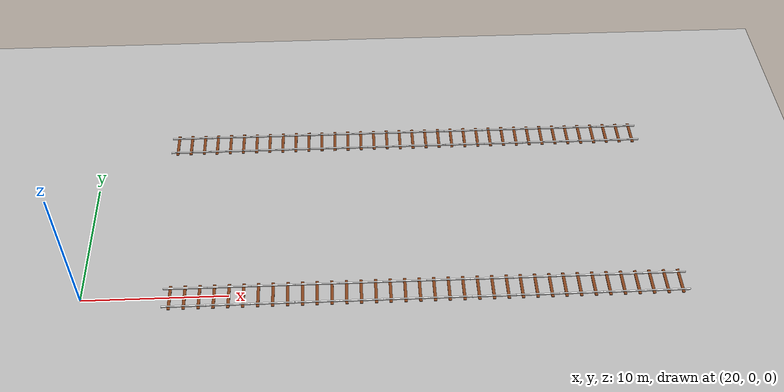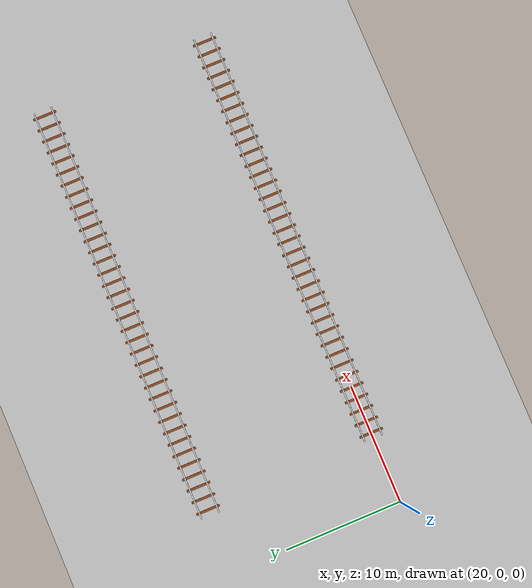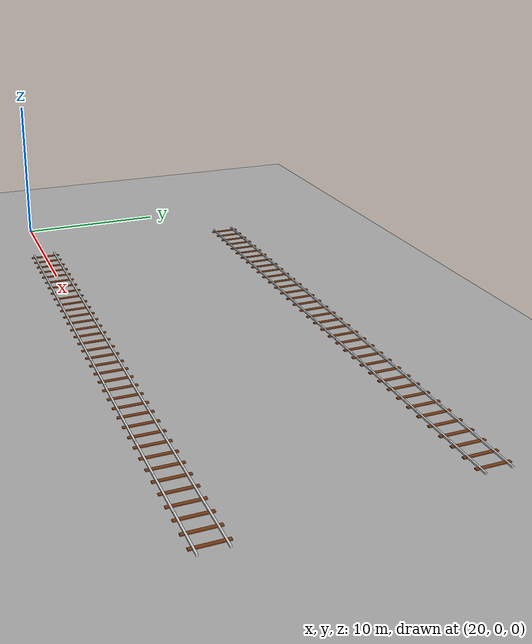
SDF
<sdf version="1.10">
 <world name="myworld">
  <model name="rail10">
   <static>true</static>
   <pose>27 0 0 0 0 0</pose>
   <link name="rail_link">
    <visual name="rail_left">
     <pose>0 0.75 0.050000000000000003 0 0 0</pose>
     <geometry><box><size>3 0.10000000000000001 0.10000000000000001</size></box></geometry>
     <material>
      <ambient>0.800000012 0.800000012 0.800000012 1</ambient>
      <diffuse>0.899999976 0.899999976 0.899999976 1</diffuse>
     </material>
    </visual>
    <visual name="rail_right">
     <pose>0 -0.75 0.050000000000000003 0 0 0</pose>
     <geometry><box><size>3 0.10000000000000001 0.10000000000000001</size></box></geometry>
     <material>
      <ambient>0.800000012 0.800000012 0.800000012 1</ambient>
      <diffuse>0.899999976 0.899999976 0.899999976 1</diffuse>
     </material>
    </visual>
    <visual name="traverse_1">
     <pose>1 0 0.025000000000000001 0 0 0</pose>
     <geometry><box><size>0.20000000000000001 2 0.050000000000000003</size></box></geometry>
     <material>
      <ambient>0.400000006 0.200000003 0.100000001 1</ambient>
      <diffuse>0.5 0.25 0.100000001 1</diffuse>
     </material>
    </visual>
    <visual name="traverse_2">
     <pose>0 0 0.025000000000000001 0 0 0</pose>
     <geometry><box><size>0.20000000000000001 2 0.050000000000000003</size></box></geometry>
     <material>
      <ambient>0.400000006 0.200000003 0.100000001 1</ambient>
      <diffuse>0.5 0.25 0.100000001 1</diffuse>
     </material>
    </visual>
    <visual name="traverse_3">
     <pose>-1 0 0.025000000000000001 0 0 0</pose>
     <geometry><box><size>0.20000000000000001 2 0.050000000000000003</size></box></geometry>
     <material>
      <ambient>0.400000006 0.200000003 0.100000001 1</ambient>
      <diffuse>0.5 0.25 0.100000001 1</diffuse>
     </material>
    </visual>
    <inertial>
     <mass>1</mass>
     <inertia><ixx>1</ixx><ixy>0</ixy><ixz>0</ixz><iyy>1</iyy><iyz>0</iyz><izz>1</izz></inertia>
    </inertial>
   </link>
  </model>
  <model name="rail11">
   <static>true</static>
   <pose>30 0 0 0 0 0</pose>
   <link name="rail_link">
    <visual name="rail_left">
     <pose>0 0.75 0.050000000000000003 0 0 0</pose>
     <geometry><box><size>3 0.10000000000000001 0.10000000000000001</size></box></geometry>
     <material>
      <ambient>0.800000012 0.800000012 0.800000012 1</ambient>
      <diffuse>0.899999976 0.899999976 0.899999976 1</diffuse>
     </material>
    </visual>
    <visual name="rail_right">
     <pose>0 -0.75 0.050000000000000003 0 0 0</pose>
     <geometry><box><size>3 0.10000000000000001 0.10000000000000001</size></box></geometry>
     <material>
      <ambient>0.800000012 0.800000012 0.800000012 1</ambient>
      <diffuse>0.899999976 0.899999976 0.899999976 1</diffuse>
     </material>
    </visual>
    <visual name="traverse_1">
     <pose>1 0 0.025000000000000001 0 0 0</pose>
     <geometry><box><size>0.20000000000000001 2 0.050000000000000003</size></box></geometry>
     <material>
      <ambient>0.400000006 0.200000003 0.100000001 1</ambient>
      <diffuse>0.5 0.25 0.100000001 1</diffuse>
     </material>
    </visual>
    <visual name="traverse_2">
     <pose>0 0 0.025000000000000001 0 0 0</pose>
     <geometry><box><size>0.20000000000000001 2 0.050000000000000003</size></box></geometry>
     <material>
      <ambient>0.400000006 0.200000003 0.100000001 1</ambient>
      <diffuse>0.5 0.25 0.100000001 1</diffuse>
     </material>
    </visual>
    <visual name="traverse_3">
     <pose>-1 0 0.025000000000000001 0 0 0</pose>
     <geometry><box><size>0.20000000000000001 2 0.050000000000000003</size></box></geometry>
     <material>
      <ambient>0.400000006 0.200000003 0.100000001 1</ambient>
      <diffuse>0.5 0.25 0.100000001 1</diffuse>
     </material>
    </visual>
    <inertial>
     <mass>1</mass>
     <inertia><ixx>1</ixx><ixy>0</ixy><ixz>0</ixz><iyy>1</iyy><iyz>0</iyz><izz>1</izz></inertia>
    </inertial>
   </link>
  </model>
  <model name="rail12">
   <static>true</static>
   <pose>33 0 0 0 0 0</pose>
   <link name="rail_link">
    <visual name="rail_left">
     <pose>0 0.75 0.050000000000000003 0 0 0</pose>
     <geometry><box><size>3 0.10000000000000001 0.10000000000000001</size></box></geometry>
     <material>
      <ambient>0.800000012 0.800000012 0.800000012 1</ambient>
      <diffuse>0.899999976 0.899999976 0.899999976 1</diffuse>
     </material>
    </visual>
    <visual name="rail_right">
     <pose>0 -0.75 0.050000000000000003 0 0 0</pose>
     <geometry><box><size>3 0.10000000000000001 0.10000000000000001</size></box></geometry>
     <material>
      <ambient>0.800000012 0.800000012 0.800000012 1</ambient>
      <diffuse>0.899999976 0.899999976 0.899999976 1</diffuse>
     </material>
    </visual>
    <visual name="traverse_1">
     <pose>1 0 0.025000000000000001 0 0 0</pose>
     <geometry><box><size>0.20000000000000001 2 0.050000000000000003</size></box></geometry>
     <material>
      <ambient>0.400000006 0.200000003 0.100000001 1</ambient>
      <diffuse>0.5 0.25 0.100000001 1</diffuse>
     </material>
    </visual>
    <visual name="traverse_2">
     <pose>0 0 0.025000000000000001 0 0 0</pose>
     <geometry><box><size>0.20000000000000001 2 0.050000000000000003</size></box></geometry>
     <material>
      <ambient>0.400000006 0.200000003 0.100000001 1</ambient>
      <diffuse>0.5 0.25 0.100000001 1</diffuse>
     </material>
    </visual>
    <visual name="traverse_3">
     <pose>-1 0 0.025000000000000001 0 0 0</pose>
     <geometry><box><size>0.20000000000000001 2 0.050000000000000003</size></box></geometry>
     <material>
      <ambient>0.400000006 0.200000003 0.100000001 1</ambient>
      <diffuse>0.5 0.25 0.100000001 1</diffuse>
     </material>
    </visual>
    <inertial>
     <mass>1</mass>
     <inertia><ixx>1</ixx><ixy>0</ixy><ixz>0</ixz><iyy>1</iyy><iyz>0</iyz><izz>1</izz></inertia>
    </inertial>
   </link>
  </model>
  <model name="ground_plane">
   <static>true</static>
   <link name="link">
    <collision name="collision">
     <geometry><plane><normal>0 0 1</normal><size>1000 1000</size></plane></geometry>
    </collision>
    <visual name="visual">
     <geometry><plane><normal>0 0 1</normal><size>1000 1000</size></plane></geometry>
     <material>
      <ambient>0.699999988 0.699999988 0.699999988 1</ambient>
      <diffuse>0.699999988 0.699999988 0.699999988 1</diffuse>
     </material>
    </visual>
    <inertial>
     <mass>1</mass>
     <inertia><ixx>1</ixx><ixy>0</ixy><ixz>0</ixz><iyy>1</iyy><iyz>0</iyz><izz>1</izz></inertia>
    </inertial>
   </link>
  </model>
  <model name="rail1_7_2_1">
   <static>true</static>
   <pose>26.402999999999999 14.5520100000000001 0 0 0 0</pose>
   <link name="rail_link">
    <visual name="rail_left">
     <pose>0 0.75 0.050000000000000003 0 0 0</pose>
     <geometry><box><size>3 0.10000000000000001 0.10000000000000001</size></box></geometry>
     <material>
      <ambient>0.800000012 0.800000012 0.800000012 1</ambient>
      <diffuse>0.899999976 0.899999976 0.899999976 1</diffuse>
     </material>
    </visual>
    <visual name="rail_right">
     <pose>0 -0.75 0.050000000000000003 0 0 0</pose>
     <geometry><box><size>3 0.10000000000000001 0.10000000000000001</size></box></geometry>
     <material>
      <ambient>0.800000012 0.800000012 0.800000012 1</ambient>
      <diffuse>0.899999976 0.899999976 0.899999976 1</diffuse>
     </material>
    </visual>
    <visual name="traverse_1">
     <pose>1 0 0.025000000000000001 0 0 0</pose>
     <geometry><box><size>0.20000000000000001 2 0.050000000000000003</size></box></geometry>
     <material>
      <ambient>0.400000006 0.200000003 0.100000001 1</ambient>
      <diffuse>0.5 0.25 0.100000001 1</diffuse>
     </material>
    </visual>
    <visual name="traverse_2">
     <pose>0 0 0.025000000000000001 0 0 0</pose>
     <geometry><box><size>0.20000000000000001 2 0.050000000000000003</size></box></geometry>
     <material>
      <ambient>0.400000006 0.200000003 0.100000001 1</ambient>
      <diffuse>0.5 0.25 0.100000001 1</diffuse>
     </material>
    </visual>
    <visual name="traverse_3">
     <pose>-1 0 0.025000000000000001 0 0 0</pose>
     <geometry><box><size>0.20000000000000001 2 0.050000000000000003</size></box></geometry>
     <material>
      <ambient>0.400000006 0.200000003 0.100000001 1</ambient>
      <diffuse>0.5 0.25 0.100000001 1</diffuse>
     </material>
    </visual>
   </link>
  </model>
  <model name="rail1_7_2_2">
   <static>true</static>
   <pose>29.383800000000001 14.5522 0 0 0 0</pose>
   <link name="rail_link">
    <visual name="rail_left">
     <pose>0 0.75 0.050000000000000003 0 0 0</pose>
     <geometry><box><size>3 0.10000000000000001 0.10000000000000001</size></box></geometry>
     <material>
      <ambient>0.800000012 0.800000012 0.800000012 1</ambient>
      <diffuse>0.899999976 0.899999976 0.899999976 1</diffuse>
     </material>
    </visual>
    <visual name="rail_right">
     <pose>0 -0.75 0.050000000000000003 0 0 0</pose>
     <geometry><box><size>3 0.10000000000000001 0.10000000000000001</size></box></geometry>
     <material>
      <ambient>0.800000012 0.800000012 0.800000012 1</ambient>
      <diffuse>0.899999976 0.899999976 0.899999976 1</diffuse>
     </material>
    </visual>
    <visual name="traverse_1">
     <pose>1 0 0.025000000000000001 0 0 0</pose>
     <geometry><box><size>0.20000000000000001 2 0.050000000000000003</size></box></geometry>
     <material>
      <ambient>0.400000006 0.200000003 0.100000001 1</ambient>
      <diffuse>0.5 0.25 0.100000001 1</diffuse>
     </material>
    </visual>
    <visual name="traverse_2">
     <pose>0 0 0.025000000000000001 0 0 0</pose>
     <geometry><box><size>0.20000000000000001 2 0.050000000000000003</size></box></geometry>
     <material>
      <ambient>0.400000006 0.200000003 0.100000001 1</ambient>
      <diffuse>0.5 0.25 0.100000001 1</diffuse>
     </material>
    </visual>
    <visual name="traverse_3">
     <pose>-1 0 0.025000000000000001 0 0 0</pose>
     <geometry><box><size>0.20000000000000001 2 0.050000000000000003</size></box></geometry>
     <material>
      <ambient>0.400000006 0.200000003 0.100000001 1</ambient>
      <diffuse>0.5 0.25 0.100000001 1</diffuse>
     </material>
    </visual>
   </link>
  </model>
  <model name="rail1_7_2_3">
   <static>true</static>
   <pose>32.385199999999998 14.5532899999999996 0 0 0 0</pose>
   <link name="rail_link">
    <visual name="rail_left">
     <pose>0 0.75 0.050000000000000003 0 0 0</pose>
     <geometry><box><size>3 0.10000000000000001 0.10000000000000001</size></box></geometry>
     <material>
      <ambient>0.800000012 0.800000012 0.800000012 1</ambient>
      <diffuse>0.899999976 0.899999976 0.899999976 1</diffuse>
     </material>
    </visual>
    <visual name="rail_right">
     <pose>0 -0.75 0.050000000000000003 0 0 0</pose>
     <geometry><box><size>3 0.10000000000000001 0.10000000000000001</size></box></geometry>
     <material>
      <ambient>0.800000012 0.800000012 0.800000012 1</ambient>
      <diffuse>0.899999976 0.899999976 0.899999976 1</diffuse>
     </material>
    </visual>
    <visual name="traverse_1">
     <pose>1 0 0.025000000000000001 0 0 0</pose>
     <geometry><box><size>0.20000000000000001 2 0.050000000000000003</size></box></geometry>
     <material>
      <ambient>0.400000006 0.200000003 0.100000001 1</ambient>
      <diffuse>0.5 0.25 0.100000001 1</diffuse>
     </material>
    </visual>
    <visual name="traverse_2">
     <pose>0 0 0.025000000000000001 0 0 0</pose>
     <geometry><box><size>0.20000000000000001 2 0.050000000000000003</size></box></geometry>
     <material>
      <ambient>0.400000006 0.200000003 0.100000001 1</ambient>
      <diffuse>0.5 0.25 0.100000001 1</diffuse>
     </material>
    </visual>
    <visual name="traverse_3">
     <pose>-1 0 0.025000000000000001 0 0 0</pose>
     <geometry><box><size>0.20000000000000001 2 0.050000000000000003</size></box></geometry>
     <material>
      <ambient>0.400000006 0.200000003 0.100000001 1</ambient>
      <diffuse>0.5 0.25 0.100000001 1</diffuse>
     </material>
    </visual>
   </link>
  </model>
  <model name="rail12_1">
   <static>true</static>
   <pose>36.006 0.0024025600000000002 0 0 0 0</pose>
   <link name="rail_link">
    <visual name="rail_left">
     <pose>0 0.75 0.050000000000000003 0 0 0</pose>
     <geometry><box><size>3 0.10000000000000001 0.10000000000000001</size></box></geometry>
     <material>
      <ambient>0.800000012 0.800000012 0.800000012 1</ambient>
      <diffuse>0.899999976 0.899999976 0.899999976 1</diffuse>
     </material>
    </visual>
    <visual name="rail_right">
     <pose>0 -0.75 0.050000000000000003 0 0 0</pose>
     <geometry><box><size>3 0.10000000000000001 0.10000000000000001</size></box></geometry>
     <material>
      <ambient>0.800000012 0.800000012 0.800000012 1</ambient>
      <diffuse>0.899999976 0.899999976 0.899999976 1</diffuse>
     </material>
    </visual>
    <visual name="traverse_1">
     <pose>1 0 0.025000000000000001 0 0 0</pose>
     <geometry><box><size>0.20000000000000001 2 0.050000000000000003</size></box></geometry>
     <material>
      <ambient>0.400000006 0.200000003 0.100000001 1</ambient>
      <diffuse>0.5 0.25 0.100000001 1</diffuse>
     </material>
    </visual>
    <visual name="traverse_2">
     <pose>0 0 0.025000000000000001 0 0 0</pose>
     <geometry><box><size>0.20000000000000001 2 0.050000000000000003</size></box></geometry>
     <material>
      <ambient>0.400000006 0.200000003 0.100000001 1</ambient>
      <diffuse>0.5 0.25 0.100000001 1</diffuse>
     </material>
    </visual>
    <visual name="traverse_3">
     <pose>-1 0 0.025000000000000001 0 0 0</pose>
     <geometry><box><size>0.20000000000000001 2 0.050000000000000003</size></box></geometry>
     <material>
      <ambient>0.400000006 0.200000003 0.100000001 1</ambient>
      <diffuse>0.5 0.25 0.100000001 1</diffuse>
     </material>
    </visual>
   </link>
  </model>
  <model name="rail12_2">
   <static>true</static>
   <pose>39.000700000000002 -0.00069501899999999995 0 0 0 0</pose>
   <link name="rail_link">
    <visual name="rail_left">
     <pose>0 0.75 0.050000000000000003 0 0 0</pose>
     <geometry><box><size>3 0.10000000000000001 0.10000000000000001</size></box></geometry>
     <material>
      <ambient>0.800000012 0.800000012 0.800000012 1</ambient>
      <diffuse>0.899999976 0.899999976 0.899999976 1</diffuse>
     </material>
    </visual>
    <visual name="rail_right">
     <pose>0 -0.75 0.050000000000000003 0 0 0</pose>
     <geometry><box><size>3 0.10000000000000001 0.10000000000000001</size></box></geometry>
     <material>
      <ambient>0.800000012 0.800000012 0.800000012 1</ambient>
      <diffuse>0.899999976 0.899999976 0.899999976 1</diffuse>
     </material>
    </visual>
    <visual name="traverse_1">
     <pose>1 0 0.025000000000000001 0 0 0</pose>
     <geometry><box><size>0.20000000000000001 2 0.050000000000000003</size></box></geometry>
     <material>
      <ambient>0.400000006 0.200000003 0.100000001 1</ambient>
      <diffuse>0.5 0.25 0.100000001 1</diffuse>
     </material>
    </visual>
    <visual name="traverse_2">
     <pose>0 0 0.025000000000000001 0 0 0</pose>
     <geometry><box><size>0.20000000000000001 2 0.050000000000000003</size></box></geometry>
     <material>
      <ambient>0.400000006 0.200000003 0.100000001 1</ambient>
      <diffuse>0.5 0.25 0.100000001 1</diffuse>
     </material>
    </visual>
    <visual name="traverse_3">
     <pose>-1 0 0.025000000000000001 0 0 0</pose>
     <geometry><box><size>0.20000000000000001 2 0.050000000000000003</size></box></geometry>
     <material>
      <ambient>0.400000006 0.200000003 0.100000001 1</ambient>
      <diffuse>0.5 0.25 0.100000001 1</diffuse>
     </material>
    </visual>
   </link>
  </model>
  <model name="rail12_3">
   <static>true</static>
   <pose>42.0002 0.0034047999999999999 0 0 0 0</pose>
   <link name="rail_link">
    <visual name="rail_left">
     <pose>0 0.75 0.050000000000000003 0 0 0</pose>
     <geometry><box><size>3 0.10000000000000001 0.10000000000000001</size></box></geometry>
     <material>
      <ambient>0.800000012 0.800000012 0.800000012 1</ambient>
      <diffuse>0.899999976 0.899999976 0.899999976 1</diffuse>
     </material>
    </visual>
    <visual name="rail_right">
     <pose>0 -0.75 0.050000000000000003 0 0 0</pose>
     <geometry><box><size>3 0.10000000000000001 0.10000000000000001</size></box></geometry>
     <material>
      <ambient>0.800000012 0.800000012 0.800000012 1</ambient>
      <diffuse>0.899999976 0.899999976 0.899999976 1</diffuse>
     </material>
    </visual>
    <visual name="traverse_1">
     <pose>1 0 0.025000000000000001 0 0 0</pose>
     <geometry><box><size>0.20000000000000001 2 0.050000000000000003</size></box></geometry>
     <material>
      <ambient>0.400000006 0.200000003 0.100000001 1</ambient>
      <diffuse>0.5 0.25 0.100000001 1</diffuse>
     </material>
    </visual>
    <visual name="traverse_2">
     <pose>0 0 0.025000000000000001 0 0 0</pose>
     <geometry><box><size>0.20000000000000001 2 0.050000000000000003</size></box></geometry>
     <material>
      <ambient>0.400000006 0.200000003 0.100000001 1</ambient>
      <diffuse>0.5 0.25 0.100000001 1</diffuse>
     </material>
    </visual>
    <visual name="traverse_3">
     <pose>-1 0 0.025000000000000001 0 0 0</pose>
     <geometry><box><size>0.20000000000000001 2 0.050000000000000003</size></box></geometry>
     <material>
      <ambient>0.400000006 0.200000003 0.100000001 1</ambient>
      <diffuse>0.5 0.25 0.100000001 1</diffuse>
     </material>
    </visual>
   </link>
  </model>
  <model name="rail12_4">
   <static>true</static>
   <pose>44.994999999999997 0.0041670500000000003 0 0 0 0</pose>
   <link name="rail_link">
    <visual name="rail_left">
     <pose>0 0.75 0.050000000000000003 0 0 0</pose>
     <geometry><box><size>3 0.10000000000000001 0.10000000000000001</size></box></geometry>
     <material>
      <ambient>0.800000012 0.800000012 0.800000012 1</ambient>
      <diffuse>0.899999976 0.899999976 0.899999976 1</diffuse>
     </material>
    </visual>
    <visual name="rail_right">
     <pose>0 -0.75 0.050000000000000003 0 0 0</pose>
     <geometry><box><size>3 0.10000000000000001 0.10000000000000001</size></box></geometry>
     <material>
      <ambient>0.800000012 0.800000012 0.800000012 1</ambient>
      <diffuse>0.899999976 0.899999976 0.899999976 1</diffuse>
     </material>
    </visual>
    <visual name="traverse_1">
     <pose>1 0 0.025000000000000001 0 0 0</pose>
     <geometry><box><size>0.20000000000000001 2 0.050000000000000003</size></box></geometry>
     <material>
      <ambient>0.400000006 0.200000003 0.100000001 1</ambient>
      <diffuse>0.5 0.25 0.100000001 1</diffuse>
     </material>
    </visual>
    <visual name="traverse_2">
     <pose>0 0 0.025000000000000001 0 0 0</pose>
     <geometry><box><size>0.20000000000000001 2 0.050000000000000003</size></box></geometry>
     <material>
      <ambient>0.400000006 0.200000003 0.100000001 1</ambient>
      <diffuse>0.5 0.25 0.100000001 1</diffuse>
     </material>
    </visual>
    <visual name="traverse_3">
     <pose>-1 0 0.025000000000000001 0 0 0</pose>
     <geometry><box><size>0.20000000000000001 2 0.050000000000000003</size></box></geometry>
     <material>
      <ambient>0.400000006 0.200000003 0.100000001 1</ambient>
      <diffuse>0.5 0.25 0.100000001 1</diffuse>
     </material>
    </visual>
   </link>
  </model>
  <model name="rail12_5">
   <static>true</static>
   <pose>47.9998 -0.0062526300000000003 0 0 0 0</pose>
   <link name="rail_link">
    <visual name="rail_left">
     <pose>0 0.75 0.050000000000000003 0 0 0</pose>
     <geometry><box><size>3 0.10000000000000001 0.10000000000000001</size></box></geometry>
     <material>
      <ambient>0.800000012 0.800000012 0.800000012 1</ambient>
      <diffuse>0.899999976 0.899999976 0.899999976 1</diffuse>
     </material>
    </visual>
    <visual name="rail_right">
     <pose>0 -0.75 0.050000000000000003 0 0 0</pose>
     <geometry><box><size>3 0.10000000000000001 0.10000000000000001</size></box></geometry>
     <material>
      <ambient>0.800000012 0.800000012 0.800000012 1</ambient>
      <diffuse>0.899999976 0.899999976 0.899999976 1</diffuse>
     </material>
    </visual>
    <visual name="traverse_1">
     <pose>1 0 0.025000000000000001 0 0 0</pose>
     <geometry><box><size>0.20000000000000001 2 0.050000000000000003</size></box></geometry>
     <material>
      <ambient>0.400000006 0.200000003 0.100000001 1</ambient>
      <diffuse>0.5 0.25 0.100000001 1</diffuse>
     </material>
    </visual>
    <visual name="traverse_2">
     <pose>0 0 0.025000000000000001 0 0 0</pose>
     <geometry><box><size>0.20000000000000001 2 0.050000000000000003</size></box></geometry>
     <material>
      <ambient>0.400000006 0.200000003 0.100000001 1</ambient>
      <diffuse>0.5 0.25 0.100000001 1</diffuse>
     </material>
    </visual>
    <visual name="traverse_3">
     <pose>-1 0 0.025000000000000001 0 0 0</pose>
     <geometry><box><size>0.20000000000000001 2 0.050000000000000003</size></box></geometry>
     <material>
      <ambient>0.400000006 0.200000003 0.100000001 1</ambient>
      <diffuse>0.5 0.25 0.100000001 1</diffuse>
     </material>
    </visual>
   </link>
  </model>
  <model name="rail12_6">
   <static>true</static>
   <pose>50.968299999999999 -0.0039465000000000004 0 0 0 0</pose>
   <link name="rail_link">
    <visual name="rail_left">
     <pose>0 0.75 0.050000000000000003 0 0 0</pose>
     <geometry><box><size>3 0.10000000000000001 0.10000000000000001</size></box></geometry>
     <material>
      <ambient>0.800000012 0.800000012 0.800000012 1</ambient>
      <diffuse>0.899999976 0.899999976 0.899999976 1</diffuse>
     </material>
    </visual>
    <visual name="rail_right">
     <pose>0 -0.75 0.050000000000000003 0 0 0</pose>
     <geometry><box><size>3 0.10000000000000001 0.10000000000000001</size></box></geometry>
     <material>
      <ambient>0.800000012 0.800000012 0.800000012 1</ambient>
      <diffuse>0.899999976 0.899999976 0.899999976 1</diffuse>
     </material>
    </visual>
    <visual name="traverse_1">
     <pose>1 0 0.025000000000000001 0 0 0</pose>
     <geometry><box><size>0.20000000000000001 2 0.050000000000000003</size></box></geometry>
     <material>
      <ambient>0.400000006 0.200000003 0.100000001 1</ambient>
      <diffuse>0.5 0.25 0.100000001 1</diffuse>
     </material>
    </visual>
    <visual name="traverse_2">
     <pose>0 0 0.025000000000000001 0 0 0</pose>
     <geometry><box><size>0.20000000000000001 2 0.050000000000000003</size></box></geometry>
     <material>
      <ambient>0.400000006 0.200000003 0.100000001 1</ambient>
      <diffuse>0.5 0.25 0.100000001 1</diffuse>
     </material>
    </visual>
    <visual name="traverse_3">
     <pose>-1 0 0.025000000000000001 0 0 0</pose>
     <geometry><box><size>0.20000000000000001 2 0.050000000000000003</size></box></geometry>
     <material>
      <ambient>0.400000006 0.200000003 0.100000001 1</ambient>
      <diffuse>0.5 0.25 0.100000001 1</diffuse>
     </material>
    </visual>
   </link>
  </model>
  <model name="rail12_7">
   <static>true</static>
   <pose>53.939599999999999 0.0031003099999999998 0 0 0 0</pose>
   <link name="rail_link">
    <visual name="rail_left">
     <pose>0 0.75 0.050000000000000003 0 0 0</pose>
     <geometry><box><size>3 0.10000000000000001 0.10000000000000001</size></box></geometry>
     <material>
      <ambient>0.800000012 0.800000012 0.800000012 1</ambient>
      <diffuse>0.899999976 0.899999976 0.899999976 1</diffuse>
     </material>
    </visual>
    <visual name="rail_right">
     <pose>0 -0.75 0.050000000000000003 0 0 0</pose>
     <geometry><box><size>3 0.10000000000000001 0.10000000000000001</size></box></geometry>
     <material>
      <ambient>0.800000012 0.800000012 0.800000012 1</ambient>
      <diffuse>0.899999976 0.899999976 0.899999976 1</diffuse>
     </material>
    </visual>
    <visual name="traverse_1">
     <pose>1 0 0.025000000000000001 0 0 0</pose>
     <geometry><box><size>0.20000000000000001 2 0.050000000000000003</size></box></geometry>
     <material>
      <ambient>0.400000006 0.200000003 0.100000001 1</ambient>
      <diffuse>0.5 0.25 0.100000001 1</diffuse>
     </material>
    </visual>
    <visual name="traverse_2">
     <pose>0 0 0.025000000000000001 0 0 0</pose>
     <geometry><box><size>0.20000000000000001 2 0.050000000000000003</size></box></geometry>
     <material>
      <ambient>0.400000006 0.200000003 0.100000001 1</ambient>
      <diffuse>0.5 0.25 0.100000001 1</diffuse>
     </material>
    </visual>
    <visual name="traverse_3">
     <pose>-1 0 0.025000000000000001 0 0 0</pose>
     <geometry><box><size>0.20000000000000001 2 0.050000000000000003</size></box></geometry>
     <material>
      <ambient>0.400000006 0.200000003 0.100000001 1</ambient>
      <diffuse>0.5 0.25 0.100000001 1</diffuse>
     </material>
    </visual>
   </link>
  </model>
  <model name="rail12_8">
   <static>true</static>
   <pose>56.937899999999999 0.00445832 0 0 0 0</pose>
   <link name="rail_link">
    <visual name="rail_left">
     <pose>0 0.75 0.050000000000000003 0 0 0</pose>
     <geometry><box><size>3 0.10000000000000001 0.10000000000000001</size></box></geometry>
     <material>
      <ambient>0.800000012 0.800000012 0.800000012 1</ambient>
      <diffuse>0.899999976 0.899999976 0.899999976 1</diffuse>
     </material>
    </visual>
    <visual name="rail_right">
     <pose>0 -0.75 0.050000000000000003 0 0 0</pose>
     <geometry><box><size>3 0.10000000000000001 0.10000000000000001</size></box></geometry>
     <material>
      <ambient>0.800000012 0.800000012 0.800000012 1</ambient>
      <diffuse>0.899999976 0.899999976 0.899999976 1</diffuse>
     </material>
    </visual>
    <visual name="traverse_1">
     <pose>1 0 0.025000000000000001 0 0 0</pose>
     <geometry><box><size>0.20000000000000001 2 0.050000000000000003</size></box></geometry>
     <material>
      <ambient>0.400000006 0.200000003 0.100000001 1</ambient>
      <diffuse>0.5 0.25 0.100000001 1</diffuse>
     </material>
    </visual>
    <visual name="traverse_2">
     <pose>0 0 0.025000000000000001 0 0 0</pose>
     <geometry><box><size>0.20000000000000001 2 0.050000000000000003</size></box></geometry>
     <material>
      <ambient>0.400000006 0.200000003 0.100000001 1</ambient>
      <diffuse>0.5 0.25 0.100000001 1</diffuse>
     </material>
    </visual>
    <visual name="traverse_3">
     <pose>-1 0 0.025000000000000001 0 0 0</pose>
     <geometry><box><size>0.20000000000000001 2 0.050000000000000003</size></box></geometry>
     <material>
      <ambient>0.400000006 0.200000003 0.100000001 1</ambient>
      <diffuse>0.5 0.25 0.100000001 1</diffuse>
     </material>
    </visual>
   </link>
  </model>
  <model name="rail12_9">
   <static>true</static>
   <pose>59.928100000000001 0.0101362 0 0 0 0</pose>
   <link name="rail_link">
    <visual name="rail_left">
     <pose>0 0.75 0.050000000000000003 0 0 0</pose>
     <geometry><box><size>3 0.10000000000000001 0.10000000000000001</size></box></geometry>
     <material>
      <ambient>0.800000012 0.800000012 0.800000012 1</ambient>
      <diffuse>0.899999976 0.899999976 0.899999976 1</diffuse>
     </material>
    </visual>
    <visual name="rail_right">
     <pose>0 -0.75 0.050000000000000003 0 0 0</pose>
     <geometry><box><size>3 0.10000000000000001 0.10000000000000001</size></box></geometry>
     <material>
      <ambient>0.800000012 0.800000012 0.800000012 1</ambient>
      <diffuse>0.899999976 0.899999976 0.899999976 1</diffuse>
     </material>
    </visual>
    <visual name="traverse_1">
     <pose>1 0 0.025000000000000001 0 0 0</pose>
     <geometry><box><size>0.20000000000000001 2 0.050000000000000003</size></box></geometry>
     <material>
      <ambient>0.400000006 0.200000003 0.100000001 1</ambient>
      <diffuse>0.5 0.25 0.100000001 1</diffuse>
     </material>
    </visual>
    <visual name="traverse_2">
     <pose>0 0 0.025000000000000001 0 0 0</pose>
     <geometry><box><size>0.20000000000000001 2 0.050000000000000003</size></box></geometry>
     <material>
      <ambient>0.400000006 0.200000003 0.100000001 1</ambient>
      <diffuse>0.5 0.25 0.100000001 1</diffuse>
     </material>
    </visual>
    <visual name="traverse_3">
     <pose>-1 0 0.025000000000000001 0 0 0</pose>
     <geometry><box><size>0.20000000000000001 2 0.050000000000000003</size></box></geometry>
     <material>
      <ambient>0.400000006 0.200000003 0.100000001 1</ambient>
      <diffuse>0.5 0.25 0.100000001 1</diffuse>
     </material>
    </visual>
   </link>
  </model>
  <model name="rail12_37_35">
   <static>true</static>
   <pose>35.383699999999997 14.5525000000000002 0 0 0 0</pose>
   <link name="rail_link">
    <visual name="rail_left">
     <pose>0 0.75 0.050000000000000003 0 0 0</pose>
     <geometry><box><size>3 0.10000000000000001 0.10000000000000001</size></box></geometry>
     <material>
      <ambient>0.800000012 0.800000012 0.800000012 1</ambient>
      <diffuse>0.899999976 0.899999976 0.899999976 1</diffuse>
     </material>
    </visual>
    <visual name="rail_right">
     <pose>0 -0.75 0.050000000000000003 0 0 0</pose>
     <geometry><box><size>3 0.10000000000000001 0.10000000000000001</size></box></geometry>
     <material>
      <ambient>0.800000012 0.800000012 0.800000012 1</ambient>
      <diffuse>0.899999976 0.899999976 0.899999976 1</diffuse>
     </material>
    </visual>
    <visual name="traverse_1">
     <pose>1 0 0.025000000000000001 0 0 0</pose>
     <geometry><box><size>0.20000000000000001 2 0.050000000000000003</size></box></geometry>
     <material>
      <ambient>0.400000006 0.200000003 0.100000001 1</ambient>
      <diffuse>0.5 0.25 0.100000001 1</diffuse>
     </material>
    </visual>
    <visual name="traverse_2">
     <pose>0 0 0.025000000000000001 0 0 0</pose>
     <geometry><box><size>0.20000000000000001 2 0.050000000000000003</size></box></geometry>
     <material>
      <ambient>0.400000006 0.200000003 0.100000001 1</ambient>
      <diffuse>0.5 0.25 0.100000001 1</diffuse>
     </material>
    </visual>
    <visual name="traverse_3">
     <pose>-1 0 0.025000000000000001 0 0 0</pose>
     <geometry><box><size>0.20000000000000001 2 0.050000000000000003</size></box></geometry>
     <material>
      <ambient>0.400000006 0.200000003 0.100000001 1</ambient>
      <diffuse>0.5 0.25 0.100000001 1</diffuse>
     </material>
    </visual>
   </link>
  </model>
  <model name="rail12_37_36">
   <static>true</static>
   <pose>38.379600000000003 14.5539899999999998 0 0 0 0</pose>
   <link name="rail_link">
    <visual name="rail_left">
     <pose>0 0.75 0.050000000000000003 0 0 0</pose>
     <geometry><box><size>3 0.10000000000000001 0.10000000000000001</size></box></geometry>
     <material>
      <ambient>0.800000012 0.800000012 0.800000012 1</ambient>
      <diffuse>0.899999976 0.899999976 0.899999976 1</diffuse>
     </material>
    </visual>
    <visual name="rail_right">
     <pose>0 -0.75 0.050000000000000003 0 0 0</pose>
     <geometry><box><size>3 0.10000000000000001 0.10000000000000001</size></box></geometry>
     <material>
      <ambient>0.800000012 0.800000012 0.800000012 1</ambient>
      <diffuse>0.899999976 0.899999976 0.899999976 1</diffuse>
     </material>
    </visual>
    <visual name="traverse_1">
     <pose>1 0 0.025000000000000001 0 0 0</pose>
     <geometry><box><size>0.20000000000000001 2 0.050000000000000003</size></box></geometry>
     <material>
      <ambient>0.400000006 0.200000003 0.100000001 1</ambient>
      <diffuse>0.5 0.25 0.100000001 1</diffuse>
     </material>
    </visual>
    <visual name="traverse_2">
     <pose>0 0 0.025000000000000001 0 0 0</pose>
     <geometry><box><size>0.20000000000000001 2 0.050000000000000003</size></box></geometry>
     <material>
      <ambient>0.400000006 0.200000003 0.100000001 1</ambient>
      <diffuse>0.5 0.25 0.100000001 1</diffuse>
     </material>
    </visual>
    <visual name="traverse_3">
     <pose>-1 0 0.025000000000000001 0 0 0</pose>
     <geometry><box><size>0.20000000000000001 2 0.050000000000000003</size></box></geometry>
     <material>
      <ambient>0.400000006 0.200000003 0.100000001 1</ambient>
      <diffuse>0.5 0.25 0.100000001 1</diffuse>
     </material>
    </visual>
   </link>
  </model>
  <model name="rail12_37_37">
   <static>true</static>
   <pose>41.376399999999997 14.5531899999999998 0 0 0 0</pose>
   <link name="rail_link">
    <visual name="rail_left">
     <pose>0 0.75 0.050000000000000003 0 0 0</pose>
     <geometry><box><size>3 0.10000000000000001 0.10000000000000001</size></box></geometry>
     <material>
      <ambient>0.800000012 0.800000012 0.800000012 1</ambient>
      <diffuse>0.899999976 0.899999976 0.899999976 1</diffuse>
     </material>
    </visual>
    <visual name="rail_right">
     <pose>0 -0.75 0.050000000000000003 0 0 0</pose>
     <geometry><box><size>3 0.10000000000000001 0.10000000000000001</size></box></geometry>
     <material>
      <ambient>0.800000012 0.800000012 0.800000012 1</ambient>
      <diffuse>0.899999976 0.899999976 0.899999976 1</diffuse>
     </material>
    </visual>
    <visual name="traverse_1">
     <pose>1 0 0.025000000000000001 0 0 0</pose>
     <geometry><box><size>0.20000000000000001 2 0.050000000000000003</size></box></geometry>
     <material>
      <ambient>0.400000006 0.200000003 0.100000001 1</ambient>
      <diffuse>0.5 0.25 0.100000001 1</diffuse>
     </material>
    </visual>
    <visual name="traverse_2">
     <pose>0 0 0.025000000000000001 0 0 0</pose>
     <geometry><box><size>0.20000000000000001 2 0.050000000000000003</size></box></geometry>
     <material>
      <ambient>0.400000006 0.200000003 0.100000001 1</ambient>
      <diffuse>0.5 0.25 0.100000001 1</diffuse>
     </material>
    </visual>
    <visual name="traverse_3">
     <pose>-1 0 0.025000000000000001 0 0 0</pose>
     <geometry><box><size>0.20000000000000001 2 0.050000000000000003</size></box></geometry>
     <material>
      <ambient>0.400000006 0.200000003 0.100000001 1</ambient>
      <diffuse>0.5 0.25 0.100000001 1</diffuse>
     </material>
    </visual>
   </link>
  </model>
  <model name="rail12_37_38">
   <static>true</static>
   <pose>44.363300000000002 14.5543300000000002 0 0 0 0</pose>
   <link name="rail_link">
    <visual name="rail_left">
     <pose>0 0.75 0.050000000000000003 0 0 0</pose>
     <geometry><box><size>3 0.10000000000000001 0.10000000000000001</size></box></geometry>
     <material>
      <ambient>0.800000012 0.800000012 0.800000012 1</ambient>
      <diffuse>0.899999976 0.899999976 0.899999976 1</diffuse>
     </material>
    </visual>
    <visual name="rail_right">
     <pose>0 -0.75 0.050000000000000003 0 0 0</pose>
     <geometry><box><size>3 0.10000000000000001 0.10000000000000001</size></box></geometry>
     <material>
      <ambient>0.800000012 0.800000012 0.800000012 1</ambient>
      <diffuse>0.899999976 0.899999976 0.899999976 1</diffuse>
     </material>
    </visual>
    <visual name="traverse_1">
     <pose>1 0 0.025000000000000001 0 0 0</pose>
     <geometry><box><size>0.20000000000000001 2 0.050000000000000003</size></box></geometry>
     <material>
      <ambient>0.400000006 0.200000003 0.100000001 1</ambient>
      <diffuse>0.5 0.25 0.100000001 1</diffuse>
     </material>
    </visual>
    <visual name="traverse_2">
     <pose>0 0 0.025000000000000001 0 0 0</pose>
     <geometry><box><size>0.20000000000000001 2 0.050000000000000003</size></box></geometry>
     <material>
      <ambient>0.400000006 0.200000003 0.100000001 1</ambient>
      <diffuse>0.5 0.25 0.100000001 1</diffuse>
     </material>
    </visual>
    <visual name="traverse_3">
     <pose>-1 0 0.025000000000000001 0 0 0</pose>
     <geometry><box><size>0.20000000000000001 2 0.050000000000000003</size></box></geometry>
     <material>
      <ambient>0.400000006 0.200000003 0.100000001 1</ambient>
      <diffuse>0.5 0.25 0.100000001 1</diffuse>
     </material>
    </visual>
   </link>
  </model>
  <model name="rail12_37_39">
   <static>true</static>
   <pose>47.351500000000001 14.5546100000000003 0 0 0 0</pose>
   <link name="rail_link">
    <visual name="rail_left">
     <pose>0 0.75 0.050000000000000003 0 0 0</pose>
     <geometry><box><size>3 0.10000000000000001 0.10000000000000001</size></box></geometry>
     <material>
      <ambient>0.800000012 0.800000012 0.800000012 1</ambient>
      <diffuse>0.899999976 0.899999976 0.899999976 1</diffuse>
     </material>
    </visual>
    <visual name="rail_right">
     <pose>0 -0.75 0.050000000000000003 0 0 0</pose>
     <geometry><box><size>3 0.10000000000000001 0.10000000000000001</size></box></geometry>
     <material>
      <ambient>0.800000012 0.800000012 0.800000012 1</ambient>
      <diffuse>0.899999976 0.899999976 0.899999976 1</diffuse>
     </material>
    </visual>
    <visual name="traverse_1">
     <pose>1 0 0.025000000000000001 0 0 0</pose>
     <geometry><box><size>0.20000000000000001 2 0.050000000000000003</size></box></geometry>
     <material>
      <ambient>0.400000006 0.200000003 0.100000001 1</ambient>
      <diffuse>0.5 0.25 0.100000001 1</diffuse>
     </material>
    </visual>
    <visual name="traverse_2">
     <pose>0 0 0.025000000000000001 0 0 0</pose>
     <geometry><box><size>0.20000000000000001 2 0.050000000000000003</size></box></geometry>
     <material>
      <ambient>0.400000006 0.200000003 0.100000001 1</ambient>
      <diffuse>0.5 0.25 0.100000001 1</diffuse>
     </material>
    </visual>
    <visual name="traverse_3">
     <pose>-1 0 0.025000000000000001 0 0 0</pose>
     <geometry><box><size>0.20000000000000001 2 0.050000000000000003</size></box></geometry>
     <material>
      <ambient>0.400000006 0.200000003 0.100000001 1</ambient>
      <diffuse>0.5 0.25 0.100000001 1</diffuse>
     </material>
    </visual>
   </link>
  </model>
  <model name="rail12_37_40">
   <static>true</static>
   <pose>50.326500000000003 14.55593 0 0 0 0</pose>
   <link name="rail_link">
    <visual name="rail_left">
     <pose>0 0.75 0.050000000000000003 0 0 0</pose>
     <geometry><box><size>3 0.10000000000000001 0.10000000000000001</size></box></geometry>
     <material>
      <ambient>0.800000012 0.800000012 0.800000012 1</ambient>
      <diffuse>0.899999976 0.899999976 0.899999976 1</diffuse>
     </material>
    </visual>
    <visual name="rail_right">
     <pose>0 -0.75 0.050000000000000003 0 0 0</pose>
     <geometry><box><size>3 0.10000000000000001 0.10000000000000001</size></box></geometry>
     <material>
      <ambient>0.800000012 0.800000012 0.800000012 1</ambient>
      <diffuse>0.899999976 0.899999976 0.899999976 1</diffuse>
     </material>
    </visual>
    <visual name="traverse_1">
     <pose>1 0 0.025000000000000001 0 0 0</pose>
     <geometry><box><size>0.20000000000000001 2 0.050000000000000003</size></box></geometry>
     <material>
      <ambient>0.400000006 0.200000003 0.100000001 1</ambient>
      <diffuse>0.5 0.25 0.100000001 1</diffuse>
     </material>
    </visual>
    <visual name="traverse_2">
     <pose>0 0 0.025000000000000001 0 0 0</pose>
     <geometry><box><size>0.20000000000000001 2 0.050000000000000003</size></box></geometry>
     <material>
      <ambient>0.400000006 0.200000003 0.100000001 1</ambient>
      <diffuse>0.5 0.25 0.100000001 1</diffuse>
     </material>
    </visual>
    <visual name="traverse_3">
     <pose>-1 0 0.025000000000000001 0 0 0</pose>
     <geometry><box><size>0.20000000000000001 2 0.050000000000000003</size></box></geometry>
     <material>
      <ambient>0.400000006 0.200000003 0.100000001 1</ambient>
      <diffuse>0.5 0.25 0.100000001 1</diffuse>
     </material>
    </visual>
   </link>
  </model>
  <model name="rail12_37_41">
   <static>true</static>
   <pose>53.311300000000003 14.5541400000000003 0 0 0 0</pose>
   <link name="rail_link">
    <visual name="rail_left">
     <pose>0 0.75 0.050000000000000003 0 0 0</pose>
     <geometry><box><size>3 0.10000000000000001 0.10000000000000001</size></box></geometry>
     <material>
      <ambient>0.800000012 0.800000012 0.800000012 1</ambient>
      <diffuse>0.899999976 0.899999976 0.899999976 1</diffuse>
     </material>
    </visual>
    <visual name="rail_right">
     <pose>0 -0.75 0.050000000000000003 0 0 0</pose>
     <geometry><box><size>3 0.10000000000000001 0.10000000000000001</size></box></geometry>
     <material>
      <ambient>0.800000012 0.800000012 0.800000012 1</ambient>
      <diffuse>0.899999976 0.899999976 0.899999976 1</diffuse>
     </material>
    </visual>
    <visual name="traverse_1">
     <pose>1 0 0.025000000000000001 0 0 0</pose>
     <geometry><box><size>0.20000000000000001 2 0.050000000000000003</size></box></geometry>
     <material>
      <ambient>0.400000006 0.200000003 0.100000001 1</ambient>
      <diffuse>0.5 0.25 0.100000001 1</diffuse>
     </material>
    </visual>
    <visual name="traverse_2">
     <pose>0 0 0.025000000000000001 0 0 0</pose>
     <geometry><box><size>0.20000000000000001 2 0.050000000000000003</size></box></geometry>
     <material>
      <ambient>0.400000006 0.200000003 0.100000001 1</ambient>
      <diffuse>0.5 0.25 0.100000001 1</diffuse>
     </material>
    </visual>
    <visual name="traverse_3">
     <pose>-1 0 0.025000000000000001 0 0 0</pose>
     <geometry><box><size>0.20000000000000001 2 0.050000000000000003</size></box></geometry>
     <material>
      <ambient>0.400000006 0.200000003 0.100000001 1</ambient>
      <diffuse>0.5 0.25 0.100000001 1</diffuse>
     </material>
    </visual>
   </link>
  </model>
  <model name="rail12_37_42">
   <static>true</static>
   <pose>56.305300000000003 14.5513500000000002 0 0 0 0</pose>
   <link name="rail_link">
    <visual name="rail_left">
     <pose>0 0.75 0.050000000000000003 0 0 0</pose>
     <geometry><box><size>3 0.10000000000000001 0.10000000000000001</size></box></geometry>
     <material>
      <ambient>0.800000012 0.800000012 0.800000012 1</ambient>
      <diffuse>0.899999976 0.899999976 0.899999976 1</diffuse>
     </material>
    </visual>
    <visual name="rail_right">
     <pose>0 -0.75 0.050000000000000003 0 0 0</pose>
     <geometry><box><size>3 0.10000000000000001 0.10000000000000001</size></box></geometry>
     <material>
      <ambient>0.800000012 0.800000012 0.800000012 1</ambient>
      <diffuse>0.899999976 0.899999976 0.899999976 1</diffuse>
     </material>
    </visual>
    <visual name="traverse_1">
     <pose>1 0 0.025000000000000001 0 0 0</pose>
     <geometry><box><size>0.20000000000000001 2 0.050000000000000003</size></box></geometry>
     <material>
      <ambient>0.400000006 0.200000003 0.100000001 1</ambient>
      <diffuse>0.5 0.25 0.100000001 1</diffuse>
     </material>
    </visual>
    <visual name="traverse_2">
     <pose>0 0 0.025000000000000001 0 0 0</pose>
     <geometry><box><size>0.20000000000000001 2 0.050000000000000003</size></box></geometry>
     <material>
      <ambient>0.400000006 0.200000003 0.100000001 1</ambient>
      <diffuse>0.5 0.25 0.100000001 1</diffuse>
     </material>
    </visual>
    <visual name="traverse_3">
     <pose>-1 0 0.025000000000000001 0 0 0</pose>
     <geometry><box><size>0.20000000000000001 2 0.050000000000000003</size></box></geometry>
     <material>
      <ambient>0.400000006 0.200000003 0.100000001 1</ambient>
      <diffuse>0.5 0.25 0.100000001 1</diffuse>
     </material>
    </visual>
   </link>
  </model>
  <model name="rail12_37_43">
   <static>true</static>
   <pose>59.290999999999997 14.5533400000000004 0 0 0 0</pose>
   <link name="rail_link">
    <visual name="rail_left">
     <pose>0 0.75 0.050000000000000003 0 0 0</pose>
     <geometry><box><size>3 0.10000000000000001 0.10000000000000001</size></box></geometry>
     <material>
      <ambient>0.800000012 0.800000012 0.800000012 1</ambient>
      <diffuse>0.899999976 0.899999976 0.899999976 1</diffuse>
     </material>
    </visual>
    <visual name="rail_right">
     <pose>0 -0.75 0.050000000000000003 0 0 0</pose>
     <geometry><box><size>3 0.10000000000000001 0.10000000000000001</size></box></geometry>
     <material>
      <ambient>0.800000012 0.800000012 0.800000012 1</ambient>
      <diffuse>0.899999976 0.899999976 0.899999976 1</diffuse>
     </material>
    </visual>
    <visual name="traverse_1">
     <pose>1 0 0.025000000000000001 0 0 0</pose>
     <geometry><box><size>0.20000000000000001 2 0.050000000000000003</size></box></geometry>
     <material>
      <ambient>0.400000006 0.200000003 0.100000001 1</ambient>
      <diffuse>0.5 0.25 0.100000001 1</diffuse>
     </material>
    </visual>
    <visual name="traverse_2">
     <pose>0 0 0.025000000000000001 0 0 0</pose>
     <geometry><box><size>0.20000000000000001 2 0.050000000000000003</size></box></geometry>
     <material>
      <ambient>0.400000006 0.200000003 0.100000001 1</ambient>
      <diffuse>0.5 0.25 0.100000001 1</diffuse>
     </material>
    </visual>
    <visual name="traverse_3">
     <pose>-1 0 0.025000000000000001 0 0 0</pose>
     <geometry><box><size>0.20000000000000001 2 0.050000000000000003</size></box></geometry>
     <material>
      <ambient>0.400000006 0.200000003 0.100000001 1</ambient>
      <diffuse>0.5 0.25 0.100000001 1</diffuse>
     </material>
    </visual>
   </link>
  </model>
 </world>
</sdf>
